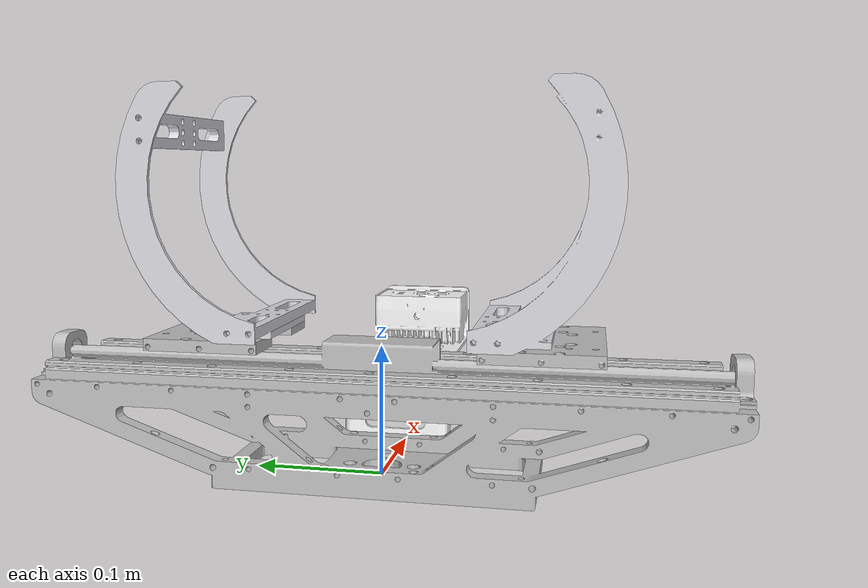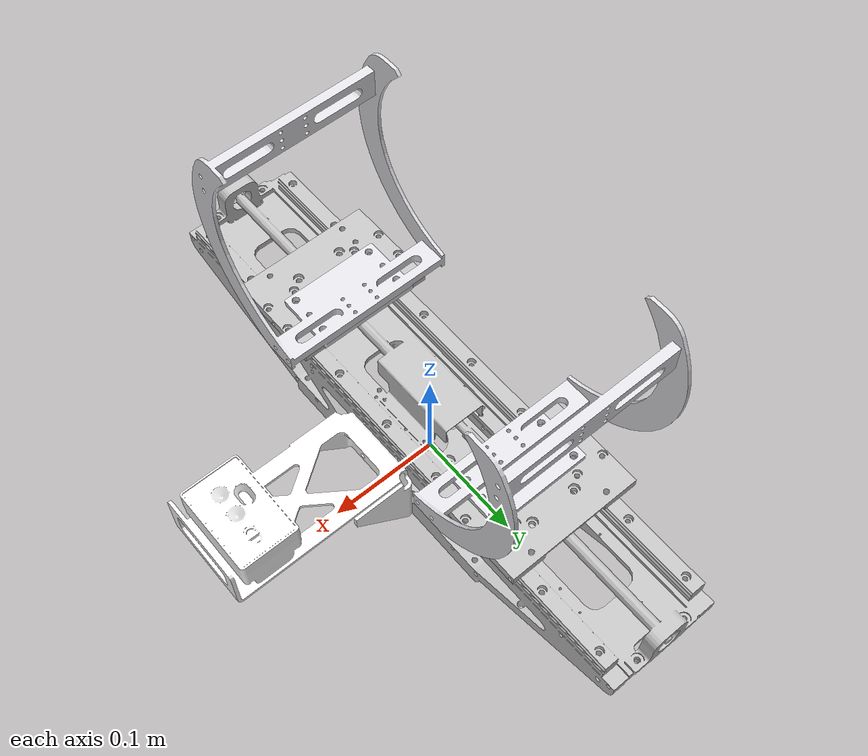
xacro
<?xml version="1.0"?>
<robot xmlns:xacro="http://wiki.ros.org/xacro" name="bucket_gripper">

    <xacro:arg name="prefix" default="bucket_gripper" />
    <xacro:include filename="$(find bucket_gripper)/xacro/bucket_gripper.xacro" />

    <xacro:bucket_gripper
        prefix="$(arg prefix)"
    >
        <origin xyz="0 0 0" rpy="0 0 0" />
    </xacro:bucket_gripper>

</robot>

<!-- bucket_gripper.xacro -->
<robot xmlns:xacro="http://wiki.ros.org/xacro">

  <xacro:macro name="bucket_gripper"
    params="
      prefix:='bucket_gripper'
      connected_to:=''
      *origin"
  >

    <xacro:unless value="${not connected_to}">
      <joint name="${prefix}_vj" type="fixed">
        <parent link="${connected_to}" />
        <child link="${prefix}_base_link" />
        <xacro:insert_block name="origin" />
      </joint>
    </xacro:unless>

    <!-- ================================================================
         Links
         ================================================================ -->

    <link name="${prefix}_base_link">
      <inertial>
        <origin xyz="-2.3651E-06 -4.3839E-06 0.063528" rpy="0 0 0" />
        <mass value="3.8087" />
        <inertia
          ixx="0.070068"  ixy="1.0646E-07" ixz="4.2826E-09"
          iyy="0.0016823" iyz="-2.5893E-08"
          izz="0.07095" />
      </inertial>
      <visual>
        <origin xyz="0 0 0" rpy="0 0 0" />
        <geometry>
          <mesh filename="package://bucket_gripper/meshes/base_link.STL" />
        </geometry>
        <material name="">
          <color rgba="0.75294 0.75294 0.75294 1" />
        </material>
      </visual>
      <collision>
        <origin xyz="0 0 0" rpy="0 0 0" />
        <geometry>
          <mesh filename="package://bucket_gripper/meshes/base_link.STL" />
        </geometry>
      </collision>
    </link>

    <link name="${prefix}_bucket_link">
      <inertial>
        <origin xyz="8.4412E-15 2.092E-06 -0.05627" rpy="0 0 0" />
        <mass value="1.124" />
        <inertia
          ixx="0.0019399" ixy="4.5E-20"   ixz="-6.715E-21"
          iyy="0.0022422" iyz="-5.15E-19"
          izz="0.001098" />
      </inertial>
      <visual>
        <origin xyz="0 0 0" rpy="0 0 0" />
        <geometry>
          <mesh filename="package://bucket_gripper/meshes/bucket_link.STL" />
        </geometry>
        <material name="">
          <color rgba="0.86667 0.86667 0.8902 1" />
        </material>
      </visual>
      <collision>
        <origin xyz="0 0 0" rpy="0 0 0" />
        <geometry>
          <mesh filename="package://bucket_gripper/meshes/bucket_link.STL" />
        </geometry>
      </collision>
    </link>

    <link name="${prefix}_adapter_link">
      <inertial>
        <origin xyz="-2.7992E-15 8.193E-16 -0.0044409" rpy="0 0 0" />
        <mass value="0.40686" />
        <inertia
          ixx="0.00022117" ixy="8.1944E-07" ixz="1.4492E-20"
          iyy="0.00060509" iyz="1.1647E-21"
          izz="0.00082067" />
      </inertial>
      <visual>
        <origin xyz="0 0 0" rpy="0 0 0" />
        <geometry>
          <mesh filename="package://bucket_gripper/meshes/adapter_link.STL" />
        </geometry>
        <material name="">
          <color rgba="0.75294 0.75294 0.75294 1" />
        </material>
      </visual>
      <collision>
        <origin xyz="0 0 0" rpy="0 0 0" />
        <geometry>
          <mesh filename="package://bucket_gripper/meshes/adapter_link.STL" />
        </geometry>
      </collision>
    </link>

    <link name="${prefix}_camera_link">
      <inertial>
        <origin xyz="0 0 0" rpy="0 0 0" />
        <mass value="0" />
        <inertia
          ixx="0" ixy="0" ixz="0"
          iyy="0" iyz="0"
          izz="0" />
      </inertial>
      <visual>
        <origin xyz="0 0 0" rpy="0 0 0" />
        <geometry>
          <mesh filename="package://bucket_gripper/meshes/camera_link.STL" />
        </geometry>
        <material name="">
          <color rgba="1 1 1 1" />
        </material>
      </visual>
      <collision>
        <origin xyz="0 0 0" rpy="0 0 0" />
        <geometry>
          <mesh filename="package://bucket_gripper/meshes/camera_link.STL" />
        </geometry>
      </collision>
    </link>

    <!-- ================================================================
         Joints
         ================================================================ -->

    <joint name="${prefix}_bucket_joint" type="fixed">
      <origin xyz="0 0 0.22243" rpy="0 0 0" />
      <parent link="${prefix}_base_link" />
      <child  link="${prefix}_bucket_link" />
    </joint>

    <joint name="${prefix}_adapter_joint" type="fixed">
      <origin xyz="0 0 0.1105" rpy="0 0 0" />
      <parent link="${prefix}_base_link" />
      <child  link="${prefix}_adapter_link" />
    </joint>

    <joint name="${prefix}_camera_joint" type="fixed">
      <origin xyz="0.1845 0.0015 0.11707" rpy="0 0 0" />
      <parent link="${prefix}_base_link" />
      <child  link="${prefix}_camera_link" />
    </joint>

  </xacro:macro>

</robot>
